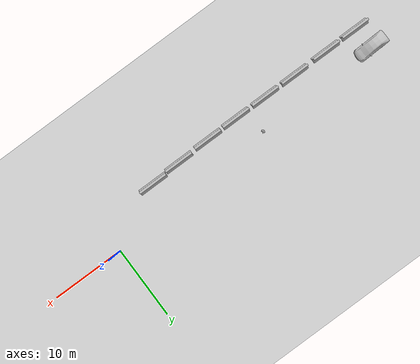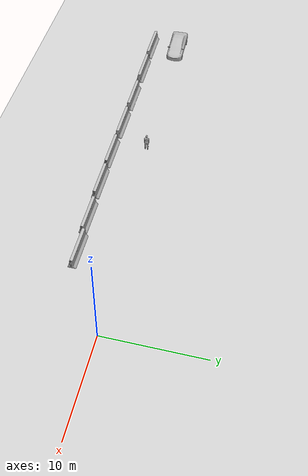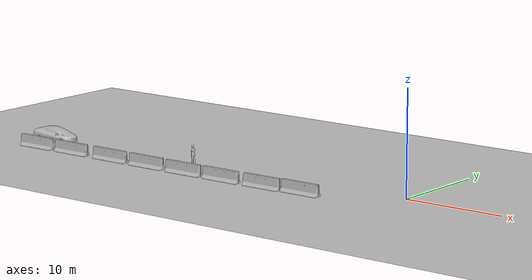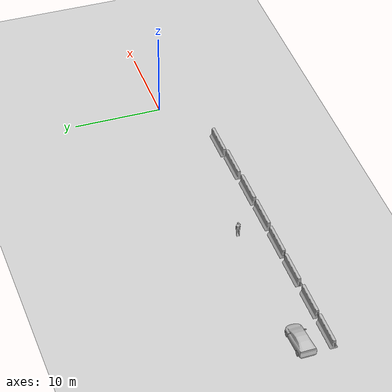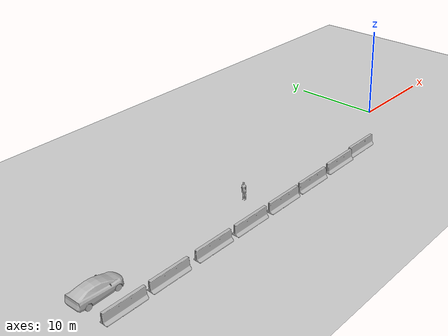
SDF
<sdf version="1.6">
 <world name="default">
  <light name="sun" type="directional">
   <pose>0 0 10 0 -0 0</pose>
   <diffuse>0.8 0.8 0.8 1</diffuse>
   <specular>0.2 0.2 0.2 1</specular>
   <attenuation>
    <range>1000</range>
    <constant>0.9</constant>
    <linear>0.01</linear>
    <quadratic>0.001</quadratic>
   </attenuation>
   <direction>-0.5 0.1 -0.9</direction>
  </light>
  <model name="ground_plane">
   <static>1</static>
   <link name="link">
    <collision name="collision">
     <geometry><plane><normal>0 0 1</normal><size>100 100</size></plane></geometry>
     <surface>
      <contact><collide_bitmask>65535</collide_bitmask></contact>
      <friction><ode><mu>100</mu><mu2>50</mu2></ode></friction>
     </surface>
    </collision>
    <visual name="visual">
     <cast_shadows>0</cast_shadows>
     <geometry><plane><normal>0 0 1</normal><size>100 100</size></plane></geometry>
     <material>
      <script><uri>file://media/materials/scripts/gazebo.material</uri><name>Gazebo/Grey</name></script>
     </material>
    </visual>
   </link>
  </model>
  <model name="prius">
   <link name="base_link">
    <inertial>
     <mass>1</mass>
     <inertia><ixx>0.001</ixx><ixy>0</ixy><ixz>0</ixz><iyy>0.001</iyy><iyz>0</iyz><izz>0.001</izz></inertia>
    </inertial>
   </link>
   <link name="chassis">
    <pose>1.45 0 0 0 -0 1.57</pose>
    <inertial>
     <pose>-0 -0.002735 0.483209 0 -0 1.5708</pose>
     <mass>1371</mass>
     <inertia>
      <ixx>2591.3</ixx>
      <ixy>0.000184475</ixy>
      <ixz>-0.702035</ixz>
      <iyy>651.702</iyy>
      <iyz>2.57872e-06</iyz>
      <izz>2744.57</izz>
     </inertia>
    </inertial>
    <collision name="chassis_collision">
     <pose>0 0.05 0.625 0 -0 0</pose>
     <geometry><box><size>1.7526 2.1 0.95</size></box></geometry>
    </collision>
    <collision name="chassis_fixed_joint_lump__front_bumper_collision_1">
     <pose>0 -2 0.458488 0 -0 0</pose>
     <geometry><box><size>1.33728 0.48 0.566691</size></box></geometry>
    </collision>
    <collision name="chassis_fixed_joint_lump__hood_collision_2">
     <pose>0 -1.90084 0.676305 0.341247 -0 0</pose>
     <geometry><box><size>1.59797 0.493107 0.265468</size></box></geometry>
    </collision>
    <collision name="chassis_fixed_joint_lump__windshield_collision_3">
     <pose>0 -0.875105 1.03227 0.335476 -0 0</pose>
     <geometry><box><size>1.16838 1.65425 0.272347</size></box></geometry>
    </collision>
    <collision name="chassis_fixed_joint_lump__top_front_collision_4">
     <pose>0 0.161236 1.38604 0.13503 -0 0</pose>
     <geometry><box><size>1.27915 0.625988 0.171868</size></box></geometry>
    </collision>
    <collision name="chassis_fixed_joint_lump__top_rear_collision_5">
     <pose>0 0.817696 1.36007 -0.068997 0 0</pose>
     <geometry><box><size>1.28513 0.771189 0.226557</size></box></geometry>
    </collision>
    <collision name="chassis_fixed_joint_lump__rear_window_collision_6">
     <pose>0 1.64053 1.17513 -0.262017 0 0</pose>
     <geometry><box><size>1.26785 1.11634 0.244286</size></box></geometry>
    </collision>
    <collision name="chassis_fixed_joint_lump__trunk_collision_7">
     <pose>0 1.63706 0.88818 0 -0 0</pose>
     <geometry><box><size>1.78806 1.13899 0.482746</size></box></geometry>
    </collision>
    <collision name="chassis_fixed_joint_lump__back_bumper_collision_8">
     <pose>0 2.05445 0.57787 0 -0 0</pose>
     <geometry><box><size>1.78165 0.512093 0.581427</size></box></geometry>
    </collision>
    <visual name="chassis_visual">
     <geometry>
      <mesh><scale>0.01 0.01 0.01</scale><uri>model://../../prius_description/meshes/hybrid_body.obj</uri></mesh>
     </geometry>
    </visual>
    <sensor name="center_laser_sensor" type="ray">
     <ray>
      <scan>
       <horizontal>
        <samples>512</samples>
        <resolution>1</resolution>
        <min_angle>-3.14</min_angle>
        <max_angle>3.14</max_angle>
       </horizontal>
       <vertical><samples>16</samples><min_angle>-0.1</min_angle><max_angle>-0.32</max_angle></vertical>
      </scan>
      <range><min>0.2</min><max>30</max><resolution>0.01</resolution></range>
     </ray>
     <plugin name="center_laser" filename="libgazebo_ros_block_laser.so">
      <topicName>/prius/center_laser/scan</topicName>
      <frameName>center_laser_link</frameName>
      <gaussianNoise>0.01</gaussianNoise>
      <robotNamespace>/</robotNamespace>
     </plugin>
     <always_on>1</always_on>
     <update_rate>30</update_rate>
     <visualize>0</visualize>
     <pose>0 0.4 1.8 0 0 -1.5707</pose>
    </sensor>
    <sensor name="front_camera_sensor" type="camera">
     <update_rate>30</update_rate>
     <camera name="front_camera">
      <horizontal_fov>1.39626</horizontal_fov>
      <image><width>800</width><height>800</height><format>R8G8B8</format></image>
      <clip><near>0.02</near><far>300</far></clip>
      <noise><type>gaussian</type><mean>0</mean><stddev>0.007</stddev></noise>
     </camera>
     <plugin name="front_camera_controller" filename="libgazebo_ros_camera.so">
      <alwaysOn>1</alwaysOn>
      <updateRate>0.0</updateRate>
      <cameraName>/prius/front_camera</cameraName>
      <imageTopicName>image_raw</imageTopicName>
      <cameraInfoTopicName>/prius/front_camera_info</cameraInfoTopicName>
      <frameName>camera_link</frameName>
      <hackBaseline>0.07</hackBaseline>
      <distortionK1>0.0</distortionK1>
      <distortionK2>0.0</distortionK2>
      <distortionK3>0.0</distortionK3>
      <distortionT1>0.0</distortionT1>
      <distortionT2>0.0</distortionT2>
      <robotNamespace>/</robotNamespace>
     </plugin>
     <pose>0 -0.4 1.4 0 0.05 -1.5707</pose>
    </sensor>
   </link>
   <joint name="base_link_connection" type="revolute">
    <child>chassis</child>
    <parent>base_link</parent>
    <axis>
     <limit><lower>0</lower><upper>0</upper></limit>
     <dynamics>
      <damping>0</damping>
      <friction>0</friction>
      <spring_reference>0</spring_reference>
      <spring_stiffness>0</spring_stiffness>
     </dynamics>
     <use_parent_model_frame>1</use_parent_model_frame>
     <xyz>0 0 1</xyz>
    </axis>
    <physics><ode><limit><cfm>0</cfm><erp>0.2</erp></limit></ode></physics>
   </joint>
   <link name="fl_axle">
    <pose>2.86061 0.765877 0.3 0 -0 1.57</pose>
    <inertial>
     <mass>1</mass>
     <inertia><ixx>0.004</ixx><ixy>0</ixy><ixz>0</ixz><iyy>0.004</iyy><iyz>0</iyz><izz>0.004</izz></inertia>
    </inertial>
   </link>
   <joint name="front_left_steer_joint" type="revolute">
    <child>fl_axle</child>
    <parent>chassis</parent>
    <axis>
     <xyz>0 0 1</xyz>
     <limit><lower>-1e+16</lower><upper>1e+16</upper></limit>
     <dynamics><spring_reference>0</spring_reference><spring_stiffness>0</spring_stiffness></dynamics>
     <use_parent_model_frame>1</use_parent_model_frame>
    </axis>
   </joint>
   <link name="front_left_wheel">
    <pose>2.86061 0.765877 0.3 0 -0 1.57</pose>
    <inertial>
     <mass>11</mass>
     <inertia>
      <ixx>0.586312</ixx>
      <ixy>0</ixy>
      <ixz>0</ixz>
      <iyy>0.335529</iyy>
      <iyz>0</iyz>
      <izz>0.335529</izz>
     </inertia>
    </inertial>
    <collision name="front_left_wheel_collision_collision">
     <geometry><sphere><radius>0.31265</radius></sphere></geometry>
     <surface>
      <contact><ode><kp>1e+08</kp><min_depth>0.005</min_depth></ode></contact>
      <friction><ode><mu>0.9</mu><mu2>0.9</mu2></ode></friction>
     </surface>
    </collision>
    <visual name="front_left_wheel_visual">
     <geometry>
      <mesh><scale>0.01 0.01 0.01</scale><uri>model://../../prius_description/meshes/wheel.obj</uri></mesh>
     </geometry>
     <material><script><uri>__default__</uri><name>__default__</name></script></material>
    </visual>
   </link>
   <joint name="front_left_wheel_joint" type="revolute">
    <child>front_left_wheel</child>
    <parent>fl_axle</parent>
    <axis>
     <xyz>0.000796 1 0</xyz>
     <limit><lower>-1e+16</lower><upper>1e+16</upper></limit>
     <dynamics><spring_reference>0</spring_reference><spring_stiffness>0</spring_stiffness></dynamics>
     <use_parent_model_frame>1</use_parent_model_frame>
    </axis>
   </joint>
   <link name="fr_axle">
    <pose>2.85939 -0.768123 0.3 0 -0 1.57</pose>
    <inertial>
     <mass>1</mass>
     <inertia><ixx>0.004</ixx><ixy>0</ixy><ixz>0</ixz><iyy>0.004</iyy><iyz>0</iyz><izz>0.004</izz></inertia>
    </inertial>
   </link>
   <joint name="front_right_steer_joint" type="revolute">
    <child>fr_axle</child>
    <parent>chassis</parent>
    <axis>
     <xyz>0 0 1</xyz>
     <limit><lower>-1e+16</lower><upper>1e+16</upper></limit>
     <dynamics><spring_reference>0</spring_reference><spring_stiffness>0</spring_stiffness></dynamics>
     <use_parent_model_frame>1</use_parent_model_frame>
    </axis>
   </joint>
   <link name="front_right_wheel">
    <pose>2.85939 -0.768123 0.3 0 -0 1.57</pose>
    <inertial>
     <mass>11</mass>
     <inertia>
      <ixx>0.586312</ixx>
      <ixy>0</ixy>
      <ixz>0</ixz>
      <iyy>0.335529</iyy>
      <iyz>0</iyz>
      <izz>0.335529</izz>
     </inertia>
    </inertial>
    <collision name="front_right_wheel_collision_collision">
     <geometry><sphere><radius>0.31265</radius></sphere></geometry>
     <surface>
      <contact><ode><kp>1e+08</kp><min_depth>0.005</min_depth></ode></contact>
      <friction><ode><mu>0.9</mu><mu2>0.9</mu2></ode></friction>
     </surface>
    </collision>
    <visual name="front_right_wheel_visual">
     <geometry>
      <mesh><scale>0.01 0.01 0.01</scale><uri>model://../../prius_description/meshes/wheel.obj</uri></mesh>
     </geometry>
     <material><script><uri>__default__</uri><name>__default__</name></script></material>
    </visual>
   </link>
   <joint name="front_right_wheel_joint" type="revolute">
    <child>front_right_wheel</child>
    <parent>fr_axle</parent>
    <axis>
     <xyz>0.000796 1 0</xyz>
     <limit><lower>-1e+16</lower><upper>1e+16</upper></limit>
     <dynamics><spring_reference>0</spring_reference><spring_stiffness>0</spring_stiffness></dynamics>
     <use_parent_model_frame>1</use_parent_model_frame>
    </axis>
   </joint>
   <link name="rear_left_wheel">
    <pose>0.000632 0.794154 0.3 0 -0 1.57</pose>
    <inertial>
     <mass>11</mass>
     <inertia>
      <ixx>0.586312</ixx>
      <ixy>0</ixy>
      <ixz>0</ixz>
      <iyy>0.335529</iyy>
      <iyz>0</iyz>
      <izz>0.335529</izz>
     </inertia>
    </inertial>
    <collision name="rear_left_wheel_collision_collision">
     <geometry><sphere><radius>0.31265</radius></sphere></geometry>
     <surface>
      <contact><ode><kp>1e+08</kp><min_depth>0.005</min_depth></ode></contact>
      <friction><ode><mu>0.9</mu><mu2>0.9</mu2></ode></friction>
     </surface>
    </collision>
    <visual name="rear_left_wheel_visual">
     <geometry>
      <mesh><scale>0.01 0.01 0.01</scale><uri>model://../../prius_description/meshes/wheel.obj</uri></mesh>
     </geometry>
     <material><script><uri>__default__</uri><name>__default__</name></script></material>
    </visual>
   </link>
   <joint name="rear_left_wheel_joint" type="revolute">
    <child>rear_left_wheel</child>
    <parent>chassis</parent>
    <axis>
     <xyz>0.000796 1 0</xyz>
     <limit><lower>-1e+16</lower><upper>1e+16</upper></limit>
     <dynamics><spring_reference>0</spring_reference><spring_stiffness>0</spring_stiffness></dynamics>
     <use_parent_model_frame>1</use_parent_model_frame>
    </axis>
   </joint>
   <link name="rear_right_wheel">
    <pose>-0.000631 -0.791845 0.3 0 -0 1.57</pose>
    <inertial>
     <mass>11</mass>
     <inertia>
      <ixx>0.586312</ixx>
      <ixy>0</ixy>
      <ixz>0</ixz>
      <iyy>0.335529</iyy>
      <iyz>0</iyz>
      <izz>0.335529</izz>
     </inertia>
    </inertial>
    <collision name="rear_right_wheel_collision_collision">
     <geometry><sphere><radius>0.31265</radius></sphere></geometry>
     <surface>
      <contact><ode><kp>1e+08</kp><min_depth>0.005</min_depth></ode></contact>
      <friction><ode><mu>0.9</mu><mu2>0.9</mu2></ode></friction>
     </surface>
    </collision>
    <visual name="rear_right_wheel_visual">
     <geometry>
      <mesh><scale>0.01 0.01 0.01</scale><uri>model://../../prius_description/meshes/wheel.obj</uri></mesh>
     </geometry>
     <material><script><uri>__default__</uri><name>__default__</name></script></material>
    </visual>
   </link>
   <joint name="rear_right_wheel_joint" type="revolute">
    <child>rear_right_wheel</child>
    <parent>chassis</parent>
    <axis>
     <xyz>0.000796 1 0</xyz>
     <limit><lower>-1e+16</lower><upper>1e+16</upper></limit>
     <dynamics><spring_reference>0</spring_reference><spring_stiffness>0</spring_stiffness></dynamics>
     <use_parent_model_frame>1</use_parent_model_frame>
    </axis>
   </joint>
   <link name="steering_wheel">
    <pose>2.07815 0.357234 0.988243 -1.3021 0 1.57</pose>
    <inertial>
     <mass>1</mass>
     <inertia><ixx>0.145833</ixx><ixy>0</ixy><ixz>0</ixz><iyy>0.145833</iyy><iyz>0</iyz><izz>0.125</izz></inertia>
    </inertial>
    <visual name="steering_wheel_visual">
     <pose>0 0 0 1.3021 -0 0</pose>
     <geometry>
      <mesh><scale>0.01 0.01 0.01</scale><uri>model://../../prius_description/meshes/steering_wheel.obj</uri></mesh>
     </geometry>
    </visual>
   </link>
   <joint name="steering_joint" type="revolute">
    <child>steering_wheel</child>
    <parent>chassis</parent>
    <axis>
     <xyz>-0.964118 0.000768 0.265474</xyz>
     <limit><lower>-1e+16</lower><upper>1e+16</upper></limit>
     <dynamics><spring_reference>0</spring_reference><spring_stiffness>0</spring_stiffness></dynamics>
     <use_parent_model_frame>1</use_parent_model_frame>
    </axis>
   </joint>
   <plugin name="pruis_hybrid_drive" filename="libPriusHybridPlugin.so">
    <chassis>chassis</chassis>
    <front_left_wheel>front_left_wheel_joint</front_left_wheel>
    <front_right_wheel>front_right_wheel_joint</front_right_wheel>
    <front_left_wheel_steering>front_left_steer_joint</front_left_wheel_steering>
    <front_right_wheel_steering>front_right_steer_joint</front_right_wheel_steering>
    <back_left_wheel>rear_left_wheel_joint</back_left_wheel>
    <back_right_wheel>rear_right_wheel_joint</back_right_wheel>
    <steering_wheel>steering_joint</steering_wheel>
    <chassis_aero_force_gain>0.63045</chassis_aero_force_gain>
    <front_torque>859.4004393000001</front_torque>
    <back_torque>0</back_torque>
    <front_brake_torque>1031.28052716</front_brake_torque>
    <back_brake_torque>687.5203514400001</back_brake_torque>
    <max_speed>5</max_speed>
    <min_gas_flow>8.981854013171626e-05</min_gas_flow>
    <gas_efficiency>0.371</gas_efficiency>
    <battery_charge_watt_hours>291</battery_charge_watt_hours>
    <battery_discharge_watt_hours>214</battery_discharge_watt_hours>
    <max_steer>0.6458</max_steer>
    <flwheel_steering_p_gain>1e4</flwheel_steering_p_gain>
    <frwheel_steering_p_gain>1e4</frwheel_steering_p_gain>
    <flwheel_steering_i_gain>0</flwheel_steering_i_gain>
    <frwheel_steering_i_gain>0</frwheel_steering_i_gain>
    <flwheel_steering_d_gain>3e2</flwheel_steering_d_gain>
    <frwheel_steering_d_gain>3e2</frwheel_steering_d_gain>
    <robotNamespace>/</robotNamespace>
   </plugin>
   <plugin name="joint_state_publisher" filename="libgazebo_ros_joint_state_publisher.so">
    <jointName>rear_right_wheel_joint, rear_left_wheel_joint, front_right_wheel_joint, front_left_wheel_joint, front_right_steer_joint, front_left_steer_joint, steering_joint</jointName>
    <updateRate>100.0</updateRate>
    <alwaysOn>1</alwaysOn>
    <robotNamespace>/</robotNamespace>
   </plugin>
   <static>0</static>
   <plugin name="p3d" filename="libgazebo_ros_p3d.so">
    <bodyName>base_link</bodyName>
    <topicName>base_pose_ground_truth</topicName>
    <frameName>map</frameName>
    <updateRate>100.0</updateRate>
    <robotNamespace>/</robotNamespace>
   </plugin>
   <pose>-42.2124 -1.92468 0.006903 0 0.000236 0.031493</pose>
  </model>
  <gravity>0 0 -9.8</gravity>
  <magnetic_field>6e-06 2.3e-05 -4.2e-05</magnetic_field>
  <atmosphere type="adiabatic"/>
  <physics name="default_physics" default="0" type="ode">
   <max_step_size>0.001</max_step_size>
   <real_time_factor>1</real_time_factor>
   <real_time_update_rate>1000</real_time_update_rate>
  </physics>
  <scene><ambient>0.4 0.4 0.4 1</ambient><background>0.7 0.7 0.7 1</background><shadows>1</shadows></scene>
  <spherical_coordinates>
   <surface_model>EARTH_WGS84</surface_model>
   <latitude_deg>0</latitude_deg>
   <longitude_deg>0</longitude_deg>
   <elevation>0</elevation>
   <heading_deg>0</heading_deg>
  </spherical_coordinates>
  <model name="person_standing">
   <link name="link">
    <inertial>
     <pose>0 -0.1 0.95 0 -0 0</pose>
     <mass>80</mass>
     <inertia><ixx>24.88</ixx><ixy>0</ixy><ixz>0</ixz><iyy>25.73</iyy><iyz>0</iyz><izz>2.48</izz></inertia>
    </inertial>
    <collision name="bottom">
     <pose>0 -0.1 0.01 0 -0 0</pose>
     <geometry><box><size>0.5 0.35 0.02</size></box></geometry>
    </collision>
    <collision name="person">
     <pose>0 0 0.02 0.04 -0 0</pose>
     <geometry><mesh><uri>model://person_standing/meshes/standing.dae</uri></mesh></geometry>
    </collision>
    <visual name="visual">
     <pose>0 0 0.02 0.04 -0 0</pose>
     <geometry><mesh><uri>model://person_standing/meshes/standing.dae</uri></mesh></geometry>
    </visual>
   </link>
   <pose>-23.4002 -1.38707 0 -2e-06 -0 -1.5295</pose>
  </model>
  <model name="jersey_barrier">
   <static>1</static>
   <link name="link">
    <visual name="visual">
     <geometry><mesh><uri>model://jersey_barrier/meshes/jersey_barrier.dae</uri></mesh></geometry>
    </visual>
    <collision name="upright">
     <pose>0 0 0.5715 0 -0 0</pose>
     <geometry><box><size>4.06542 0.3063 1.143</size></box></geometry>
    </collision>
    <collision name="base">
     <pose>0 0 0.032258 0 -0 0</pose>
     <geometry><box><size>4.06542 0.8107 0.064516</size></box></geometry>
    </collision>
    <collision name="base2">
     <pose>0 0 0.1 0 -0 0</pose>
     <geometry><box><size>4.06542 0.65 0.1</size></box></geometry>
    </collision>
    <collision name="base3">
     <pose>0 0 0.2 0 -0 0</pose>
     <geometry><box><size>4.06542 0.5 0.1</size></box></geometry>
    </collision>
    <collision name="left-angle">
     <pose>0 -0.224 0.2401 0.9 -0 0</pose>
     <geometry><box><size>4.06542 0.5 0.064516</size></box></geometry>
    </collision>
    <collision name="right-angle">
     <pose>0 0.224 0.2401 -0.9 0 0</pose>
     <geometry><box><size>4.06542 0.5 0.064516</size></box></geometry>
    </collision>
   </link>
   <pose>-40.4726 -4.89863 0 0 -0 0</pose>
  </model>
  <model name="jersey_barrier_0">
   <static>1</static>
   <link name="link">
    <visual name="visual">
     <geometry><mesh><uri>model://jersey_barrier/meshes/jersey_barrier.dae</uri></mesh></geometry>
    </visual>
    <collision name="upright">
     <pose>0 0 0.5715 0 -0 0</pose>
     <geometry><box><size>4.06542 0.3063 1.143</size></box></geometry>
    </collision>
    <collision name="base">
     <pose>0 0 0.032258 0 -0 0</pose>
     <geometry><box><size>4.06542 0.8107 0.064516</size></box></geometry>
    </collision>
    <collision name="base2">
     <pose>0 0 0.1 0 -0 0</pose>
     <geometry><box><size>4.06542 0.65 0.1</size></box></geometry>
    </collision>
    <collision name="base3">
     <pose>0 0 0.2 0 -0 0</pose>
     <geometry><box><size>4.06542 0.5 0.1</size></box></geometry>
    </collision>
    <collision name="left-angle">
     <pose>0 -0.224 0.2401 0.9 -0 0</pose>
     <geometry><box><size>4.06542 0.5 0.064516</size></box></geometry>
    </collision>
    <collision name="right-angle">
     <pose>0 0.224 0.2401 -0.9 0 0</pose>
     <geometry><box><size>4.06542 0.5 0.064516</size></box></geometry>
    </collision>
   </link>
   <pose>-35.9243 -4.84774 0 0 -0 0</pose>
  </model>
  <model name="jersey_barrier_1">
   <static>1</static>
   <link name="link">
    <visual name="visual">
     <geometry><mesh><uri>model://jersey_barrier/meshes/jersey_barrier.dae</uri></mesh></geometry>
    </visual>
    <collision name="upright">
     <pose>0 0 0.5715 0 -0 0</pose>
     <geometry><box><size>4.06542 0.3063 1.143</size></box></geometry>
    </collision>
    <collision name="base">
     <pose>0 0 0.032258 0 -0 0</pose>
     <geometry><box><size>4.06542 0.8107 0.064516</size></box></geometry>
    </collision>
    <collision name="base2">
     <pose>0 0 0.1 0 -0 0</pose>
     <geometry><box><size>4.06542 0.65 0.1</size></box></geometry>
    </collision>
    <collision name="base3">
     <pose>0 0 0.2 0 -0 0</pose>
     <geometry><box><size>4.06542 0.5 0.1</size></box></geometry>
    </collision>
    <collision name="left-angle">
     <pose>0 -0.224 0.2401 0.9 -0 0</pose>
     <geometry><box><size>4.06542 0.5 0.064516</size></box></geometry>
    </collision>
    <collision name="right-angle">
     <pose>0 0.224 0.2401 -0.9 0 0</pose>
     <geometry><box><size>4.06542 0.5 0.064516</size></box></geometry>
    </collision>
   </link>
   <pose>-30.9443 -4.79806 0 0 -0 0</pose>
  </model>
  <model name="jersey_barrier_2">
   <static>1</static>
   <link name="link">
    <visual name="visual">
     <geometry><mesh><uri>model://jersey_barrier/meshes/jersey_barrier.dae</uri></mesh></geometry>
    </visual>
    <collision name="upright">
     <pose>0 0 0.5715 0 -0 0</pose>
     <geometry><box><size>4.06542 0.3063 1.143</size></box></geometry>
    </collision>
    <collision name="base">
     <pose>0 0 0.032258 0 -0 0</pose>
     <geometry><box><size>4.06542 0.8107 0.064516</size></box></geometry>
    </collision>
    <collision name="base2">
     <pose>0 0 0.1 0 -0 0</pose>
     <geometry><box><size>4.06542 0.65 0.1</size></box></geometry>
    </collision>
    <collision name="base3">
     <pose>0 0 0.2 0 -0 0</pose>
     <geometry><box><size>4.06542 0.5 0.1</size></box></geometry>
    </collision>
    <collision name="left-angle">
     <pose>0 -0.224 0.2401 0.9 -0 0</pose>
     <geometry><box><size>4.06542 0.5 0.064516</size></box></geometry>
    </collision>
    <collision name="right-angle">
     <pose>0 0.224 0.2401 -0.9 0 0</pose>
     <geometry><box><size>4.06542 0.5 0.064516</size></box></geometry>
    </collision>
   </link>
   <pose>-26.3258 -4.80141 0 0 -0 0</pose>
  </model>
  <model name="jersey_barrier_3">
   <static>1</static>
   <link name="link">
    <visual name="visual">
     <geometry><mesh><uri>model://jersey_barrier/meshes/jersey_barrier.dae</uri></mesh></geometry>
    </visual>
    <collision name="upright">
     <pose>0 0 0.5715 0 -0 0</pose>
     <geometry><box><size>4.06542 0.3063 1.143</size></box></geometry>
    </collision>
    <collision name="base">
     <pose>0 0 0.032258 0 -0 0</pose>
     <geometry><box><size>4.06542 0.8107 0.064516</size></box></geometry>
    </collision>
    <collision name="base2">
     <pose>0 0 0.1 0 -0 0</pose>
     <geometry><box><size>4.06542 0.65 0.1</size></box></geometry>
    </collision>
    <collision name="base3">
     <pose>0 0 0.2 0 -0 0</pose>
     <geometry><box><size>4.06542 0.5 0.1</size></box></geometry>
    </collision>
    <collision name="left-angle">
     <pose>0 -0.224 0.2401 0.9 -0 0</pose>
     <geometry><box><size>4.06542 0.5 0.064516</size></box></geometry>
    </collision>
    <collision name="right-angle">
     <pose>0 0.224 0.2401 -0.9 0 0</pose>
     <geometry><box><size>4.06542 0.5 0.064516</size></box></geometry>
    </collision>
   </link>
   <pose>-21.7551 -4.81537 0 0 -0 0</pose>
  </model>
  <model name="jersey_barrier_4">
   <static>1</static>
   <link name="link">
    <visual name="visual">
     <geometry><mesh><uri>model://jersey_barrier/meshes/jersey_barrier.dae</uri></mesh></geometry>
    </visual>
    <collision name="upright">
     <pose>0 0 0.5715 0 -0 0</pose>
     <geometry><box><size>4.06542 0.3063 1.143</size></box></geometry>
    </collision>
    <collision name="base">
     <pose>0 0 0.032258 0 -0 0</pose>
     <geometry><box><size>4.06542 0.8107 0.064516</size></box></geometry>
    </collision>
    <collision name="base2">
     <pose>0 0 0.1 0 -0 0</pose>
     <geometry><box><size>4.06542 0.65 0.1</size></box></geometry>
    </collision>
    <collision name="base3">
     <pose>0 0 0.2 0 -0 0</pose>
     <geometry><box><size>4.06542 0.5 0.1</size></box></geometry>
    </collision>
    <collision name="left-angle">
     <pose>0 -0.224 0.2401 0.9 -0 0</pose>
     <geometry><box><size>4.06542 0.5 0.064516</size></box></geometry>
    </collision>
    <collision name="right-angle">
     <pose>0 0.224 0.2401 -0.9 0 0</pose>
     <geometry><box><size>4.06542 0.5 0.064516</size></box></geometry>
    </collision>
   </link>
   <pose>-17.3158 -4.75407 0 0 -0 0</pose>
  </model>
  <model name="jersey_barrier_5">
   <static>1</static>
   <link name="link">
    <visual name="visual">
     <geometry><mesh><uri>model://jersey_barrier/meshes/jersey_barrier.dae</uri></mesh></geometry>
    </visual>
    <collision name="upright">
     <pose>0 0 0.5715 0 -0 0</pose>
     <geometry><box><size>4.06542 0.3063 1.143</size></box></geometry>
    </collision>
    <collision name="base">
     <pose>0 0 0.032258 0 -0 0</pose>
     <geometry><box><size>4.06542 0.8107 0.064516</size></box></geometry>
    </collision>
    <collision name="base2">
     <pose>0 0 0.1 0 -0 0</pose>
     <geometry><box><size>4.06542 0.65 0.1</size></box></geometry>
    </collision>
    <collision name="base3">
     <pose>0 0 0.2 0 -0 0</pose>
     <geometry><box><size>4.06542 0.5 0.1</size></box></geometry>
    </collision>
    <collision name="left-angle">
     <pose>0 -0.224 0.2401 0.9 -0 0</pose>
     <geometry><box><size>4.06542 0.5 0.064516</size></box></geometry>
    </collision>
    <collision name="right-angle">
     <pose>0 0.224 0.2401 -0.9 0 0</pose>
     <geometry><box><size>4.06542 0.5 0.064516</size></box></geometry>
    </collision>
   </link>
   <pose>-12.6572 -4.62127 0 0 -0 0</pose>
  </model>
  <model name="jersey_barrier_6">
   <static>1</static>
   <link name="link">
    <visual name="visual">
     <geometry><mesh><uri>model://jersey_barrier/meshes/jersey_barrier.dae</uri></mesh></geometry>
    </visual>
    <collision name="upright">
     <pose>0 0 0.5715 0 -0 0</pose>
     <geometry><box><size>4.06542 0.3063 1.143</size></box></geometry>
    </collision>
    <collision name="base">
     <pose>0 0 0.032258 0 -0 0</pose>
     <geometry><box><size>4.06542 0.8107 0.064516</size></box></geometry>
    </collision>
    <collision name="base2">
     <pose>0 0 0.1 0 -0 0</pose>
     <geometry><box><size>4.06542 0.65 0.1</size></box></geometry>
    </collision>
    <collision name="base3">
     <pose>0 0 0.2 0 -0 0</pose>
     <geometry><box><size>4.06542 0.5 0.1</size></box></geometry>
    </collision>
    <collision name="left-angle">
     <pose>0 -0.224 0.2401 0.9 -0 0</pose>
     <geometry><box><size>4.06542 0.5 0.064516</size></box></geometry>
    </collision>
    <collision name="right-angle">
     <pose>0 0.224 0.2401 -0.9 0 0</pose>
     <geometry><box><size>4.06542 0.5 0.064516</size></box></geometry>
    </collision>
   </link>
   <pose>-8.45049 -4.38722 0 0 -0 0</pose>
  </model>
 </world>
</sdf>
